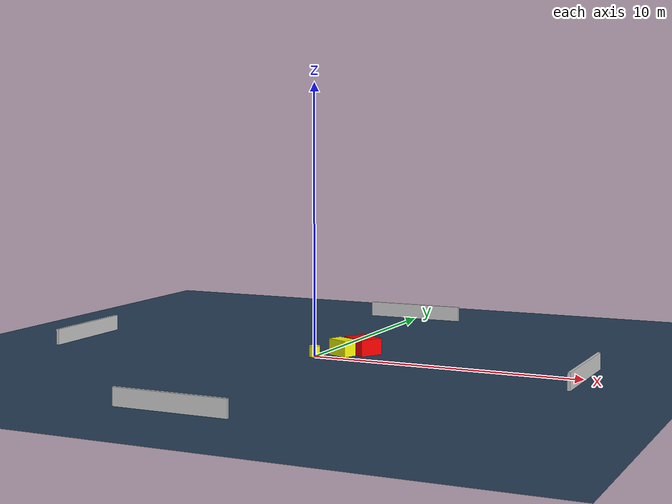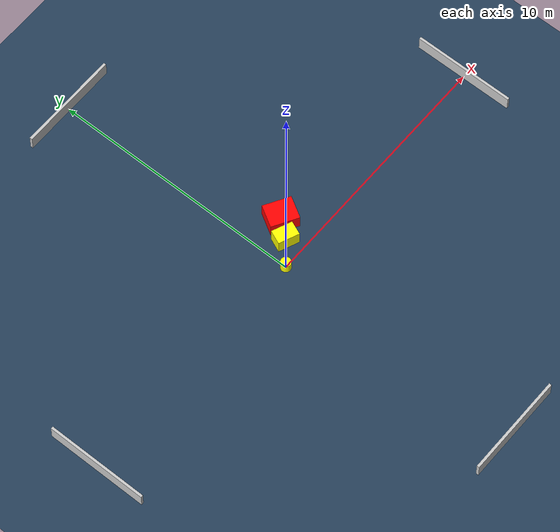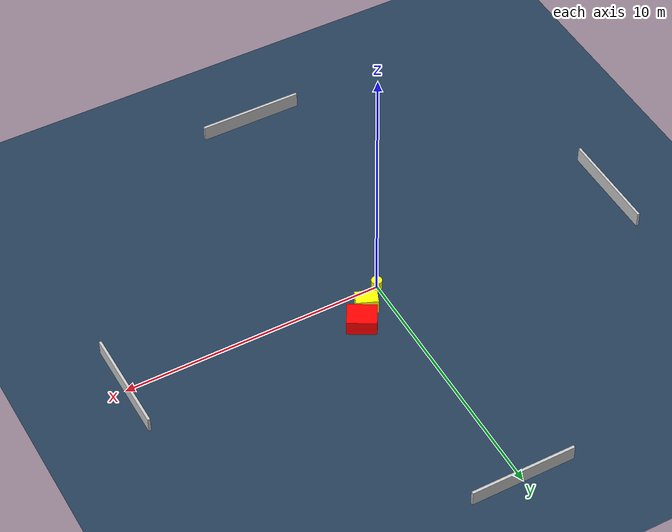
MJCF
<?xml version="1.0" ?>
<mujoco model="generated_environment">
  <option timestep="0.01" integrator="RK4" cone="elliptic"/>
  <default>
    <geom density="1"/>
  </default>
  <asset>
    <texture builtin="gradient" height="3072" name="skybox" rgb1="0.3 0.5 0.7" rgb2="0 0 0" type="skybox" width="512"/>
    <texture builtin="checker" height="300" name="groundplane" rgb1="0.2 0.3 0.4" rgb2="0.1 0.2 0.3" type="2d" width="300"/>
    <material name="groundplane" reflectance="0.2" texrepeat="5 5" texture="groundplane"/>
  </asset>
  <worldbody>
    <light dir="0 0 -1" directional="true" pos="0 0 1.5"/>
    <geom condim="3" friction="0.5 0.005 0.001" material="groundplane" name="floor" pos="0 0 0" size="0 0 0.05" type="plane"/>
    <body name="walls">
      <geom name="wall_1" condim="4" pos="-10.0 0.0 0.3" rgba="0.800000011920929 0.800000011920929 0.800000011920929 1.0" size="0.05 2.0 0.3" type="box"/>
      <geom name="wall_2" condim="4" pos="10.0 0.0 0.3" rgba="0.800000011920929 0.800000011920929 0.800000011920929 1.0" size="0.05 2.0 0.3" type="box"/>
      <geom name="wall_3" condim="4" pos="0.0 -10.0 0.3" rgba="0.800000011920929 0.800000011920929 0.800000011920929 1.0" size="2.0 0.05 0.3" type="box"/>
      <geom name="wall_4" condim="4" pos="0.0 10.0 0.3" rgba="0.800000011920929 0.800000011920929 0.800000011920929 1.0" size="2.0 0.05 0.3" type="box"/>
    </body>
    <body name="robot">
      <joint name="joint_x" type="slide" pos="0 0 0" axis="1 0 0"/>
      <joint name="joint_y" type="slide" pos="0 0 0" axis="0 1 0"/>
      <geom name="robot" type="cylinder" pos="0.0 0.0 0.2" size="0.2 0.2 0.0" mass="5.0" friction="1.0 0.005 0.0001" condim="4" rgba="1.0 1.0 0.0 1.0"/>
    </body>
    <body name="obstacle_1_movable">
      <geom name="obstacle_1_movable" condim="4" pos="0.8021889051200467 0.6831448315349528 0.3" euler="0 0 337.0759323820915" friction="0.0 0.005 0.001" rgba="1.0 1.0 0.0 1.0" size="0.41514699475280836 0.2781265799607811 0.3" type="box" mass="0.1"/>
      <joint type="free"/>
    </body>
    <body name="obstacle_2_static">
      <geom name="obstacle_2_static" condim="4" pos="1.343834881628869 1.3269448223518567 0.3" euler="0 0 329.55151267774056" friction="0.0 0.005 0.001" rgba="1.0 0.0 0.0 1.0" size="0.5509649411045523 0.452450019224529 0.3" type="box"/>
    </body>
  </worldbody>
  <actuator>
    <motor name="actuator_x" joint="joint_x" gear="1" ctrlrange="-1 1"/>
    <motor name="actuator_y" joint="joint_y" gear="1" ctrlrange="-1 1"/>
  </actuator>
</mujoco>
